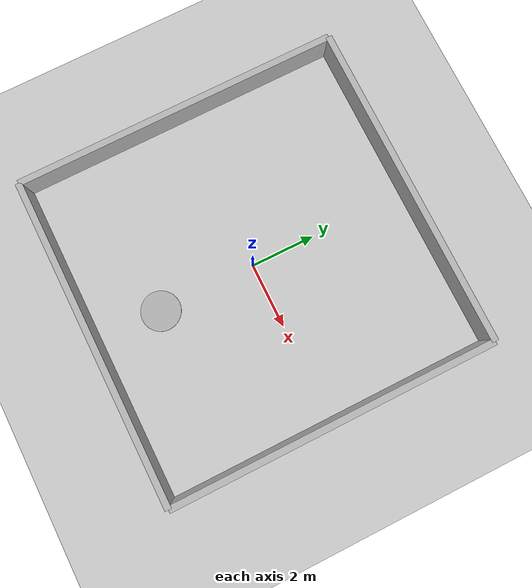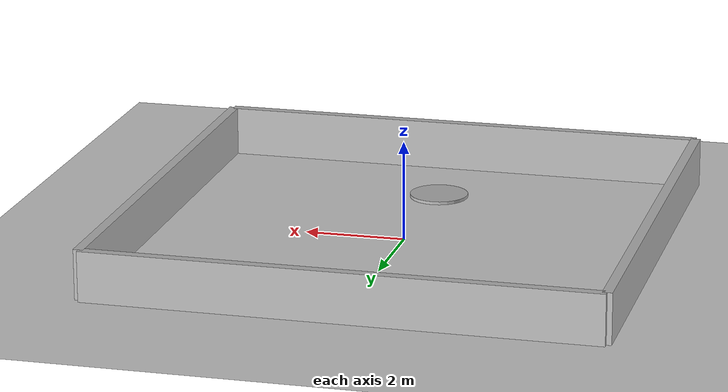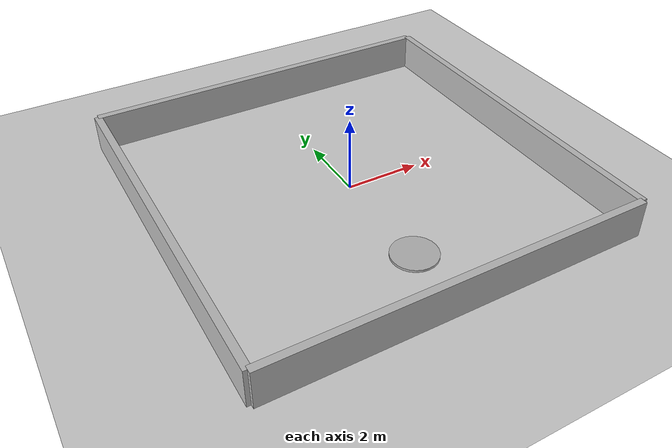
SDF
<sdf version="1.6">
 <world name="restaurant_world">
  <include><uri>model://ground_plane</uri></include>
  <include><uri>model://sun</uri></include>
  <model name="front_wall">
   <static>true</static>
   <link name="link">
    <pose>0 5 0.5 0 0 0</pose>
    <collision name="collision"><geometry><box><size>10 0.2 1</size></box></geometry></collision>
    <visual name="visual"><geometry><box><size>10 0.2 1</size></box></geometry></visual>
   </link>
  </model>
  <model name="back_wall">
   <static>true</static>
   <link name="link">
    <pose>0 -5 0.5 0 0 0</pose>
    <collision name="collision"><geometry><box><size>10 0.2 1</size></box></geometry></collision>
    <visual name="visual"><geometry><box><size>10 0.2 1</size></box></geometry></visual>
   </link>
  </model>
  <model name="left_wall">
   <static>true</static>
   <link name="link">
    <pose>-5 0 0.5 0 0 0</pose>
    <collision name="collision"><geometry><box><size>0.2 10 1</size></box></geometry></collision>
    <visual name="visual"><geometry><box><size>0.2 10 1</size></box></geometry></visual>
   </link>
  </model>
  <model name="right_wall">
   <static>true</static>
   <link name="link">
    <pose>5 0 0.5 0 0 0</pose>
    <collision name="collision"><geometry><box><size>0.2 10 1</size></box></geometry></collision>
    <visual name="visual"><geometry><box><size>0.2 10 1</size></box></geometry></visual>
   </link>
  </model>
  <model name="kitchen_round_table">
   <static>true</static>
   <link name="link">
    <pose>0 -3 0 0 0 0</pose>
    <visual name="visual">
     <geometry><cylinder><radius>0.6</radius><length>0.1</length></cylinder></geometry>
     <material><ambient>0.7 0.7 0.7 1</ambient><diffuse>0.7 0.7 0.7 1</diffuse></material>
    </visual>
    <collision name="collision">
     <geometry><cylinder><radius>0.6</radius><length>0.1</length></cylinder></geometry>
    </collision>
   </link>
  </model>
  <plugin name="gazebo_ros_control" filename="libgazebo_ros_control.so"/>
 </world>
</sdf>
